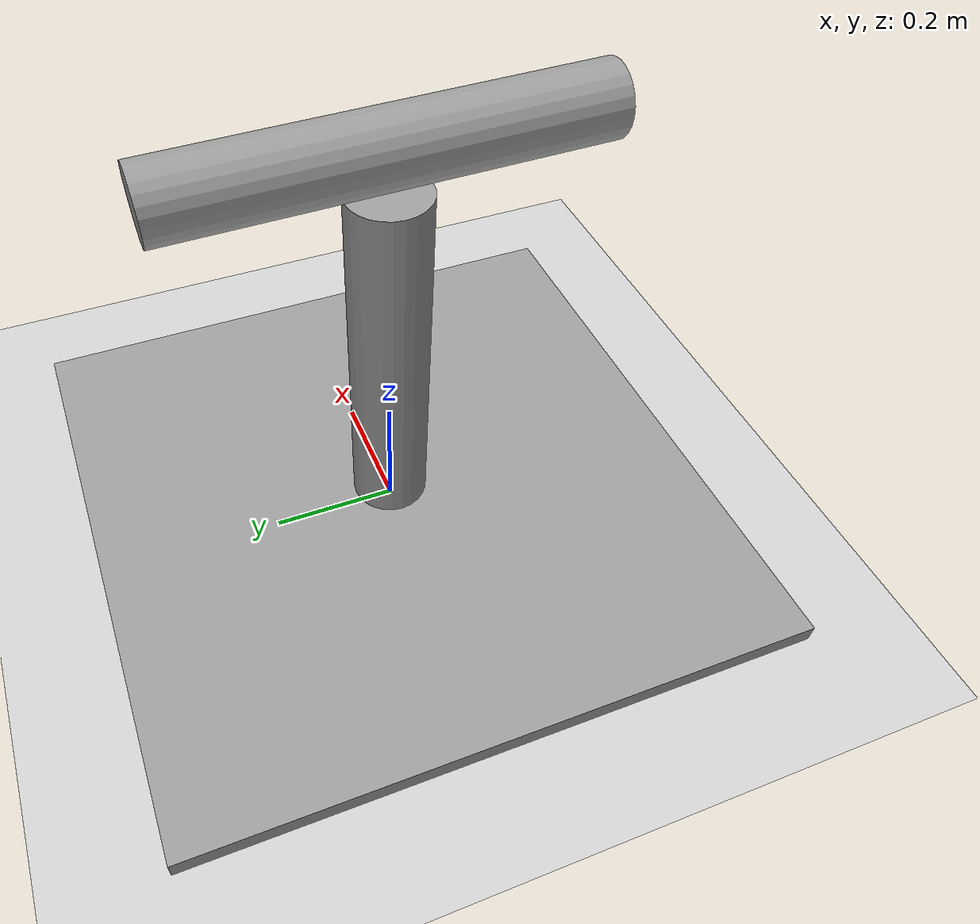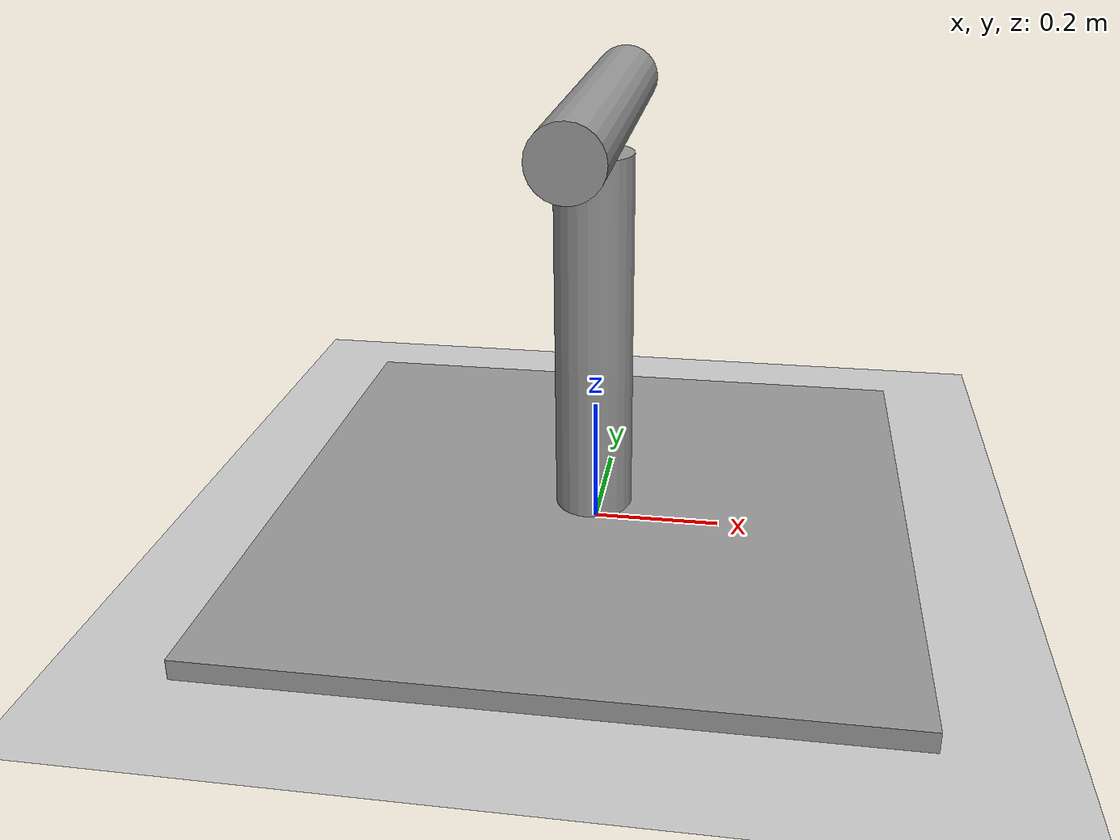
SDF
<?xml version="1.0"?>
<sdf version="1.4">
  <world name="default">
        <!-- Ground Plane -->
        <include>
            <uri>model://ground_plane</uri>
        </include>

        <include>
            <uri>model://sun</uri>
        </include>

        <gravity>0 0 0</gravity>

        <include>
            <uri>model://t_model</uri>  <!-- add plugin to model.sdf -->
            <pose>0 0 0.33 0 0 0</pose>
        </include>

  </world>
</sdf>

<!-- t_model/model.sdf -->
<sdf version='1.6'>
  <model name='t_model'>
    <plugin name='set_joint_velocity_plugin' filename='libjoint_controller_plugin.so'/>
    <link name='link_0'>
      <pose frame=''>-0.003466 -0.002423 -0.318528 0 -0 0</pose>
      <visual name='visual'>
        <pose frame=''>0 0 0 0 -0 0</pose>
        <geometry>
          <box>
            <size>1 1 0.03594</size>
          </box>
        </geometry>
        <material>
          <lighting>1</lighting>
          <script>
            <uri>file://media/materials/scripts/gazebo.material</uri>
            <name>Gazebo/Grey</name>
          </script>
          <emissive>0 0 0 1</emissive>
        </material>
        <transparency>0</transparency>
        <cast_shadows>1</cast_shadows>
      </visual>
    </link>
    <link name='link_1'>
      <pose frame=''>-0.00322 0.001434 -0.015883 0 -0 0</pose>
      <visual name='visual'>
        <pose frame=''>0 0 0 0 -0 0</pose>
        <geometry>
          <cylinder>
            <radius>0.0610422</radius>
            <length>0.586501</length>
          </cylinder>
        </geometry>
        <material>
          <lighting>1</lighting>
          <script>
            <uri>file://media/materials/scripts/gazebo.material</uri>
            <name>Gazebo/Grey</name>
          </script>
          <emissive>0 0 0 1</emissive>
        </material>
        <transparency>0</transparency>
        <cast_shadows>1</cast_shadows>
      </visual>
    </link>
    <link name='link_2'>
      <inertial>
        <mass>0.00701193</mass>
        <inertia>
          <ixx>0.000238155</ixx>
          <ixy>0</ixy>
          <ixz>0</ixz>
          <iyy>0.000238155</iyy>
          <iyz>0</iyz>
          <izz>9.72896e-06</izz>
        </inertia>
        <pose frame=''>0 0 0 0 -0 0</pose>
      </inertial>
      <pose frame=''>0.006686 0.000989 0.33441 -1.58563 0 0</pose>
      <visual name='visual'>
        <pose frame=''>0 0 0 0 -0 0</pose>
        <geometry>
          <cylinder>
            <radius>0.052678</radius>
            <length>0.631859</length>
          </cylinder>
        </geometry>
        <material>
          <lighting>1</lighting>
          <script>
            <uri>file://media/materials/scripts/gazebo.material</uri>
            <name>Gazebo/Grey</name>
          </script>
          <emissive>0 0 0 1</emissive>
        </material>
        <transparency>0</transparency>
        <cast_shadows>1</cast_shadows>
      </visual>
    </link>
    <joint name='joint_0' type='fixed'>
      <parent>link_0</parent>
      <child>link_1</child>
      <pose frame=''>0 0 0 0 -0 0</pose>
      <physics>
        <ode>
          <limit>
            <cfm>0</cfm>
            <erp>0.2</erp>
          </limit>
          <suspension>
            <cfm>0</cfm>
            <erp>0.2</erp>
          </suspension>
        </ode>
      </physics>
    </joint>
    <joint name='joint_1' type='revolute'>
      <parent>link_1</parent>
      <child>link_2</child>
      <pose frame=''>0 0 0 0 -0 0</pose>
      <axis>
        <xyz>0 -1 0</xyz>
        <use_parent_model_frame>0</use_parent_model_frame>
        <limit>
          <lower>-1.79769e+308</lower>
          <upper>1.79769e+308</upper>
          <effort>-1</effort>
          <velocity>-1</velocity>
        </limit>
        <dynamics>
          <spring_reference>0</spring_reference>
          <spring_stiffness>0</spring_stiffness>
          <damping>0</damping>
        </dynamics>
      </axis>
      <physics>
        <ode>
          <limit>
            <cfm>0</cfm>
            <erp>0.2</erp>
          </limit>
          <suspension>
            <cfm>0</cfm>
            <erp>0.2</erp>
          </suspension>
        </ode>
      </physics>
    </joint>
    <static>0</static>
    <allow_auto_disable>1</allow_auto_disable>
  </model>
</sdf>
